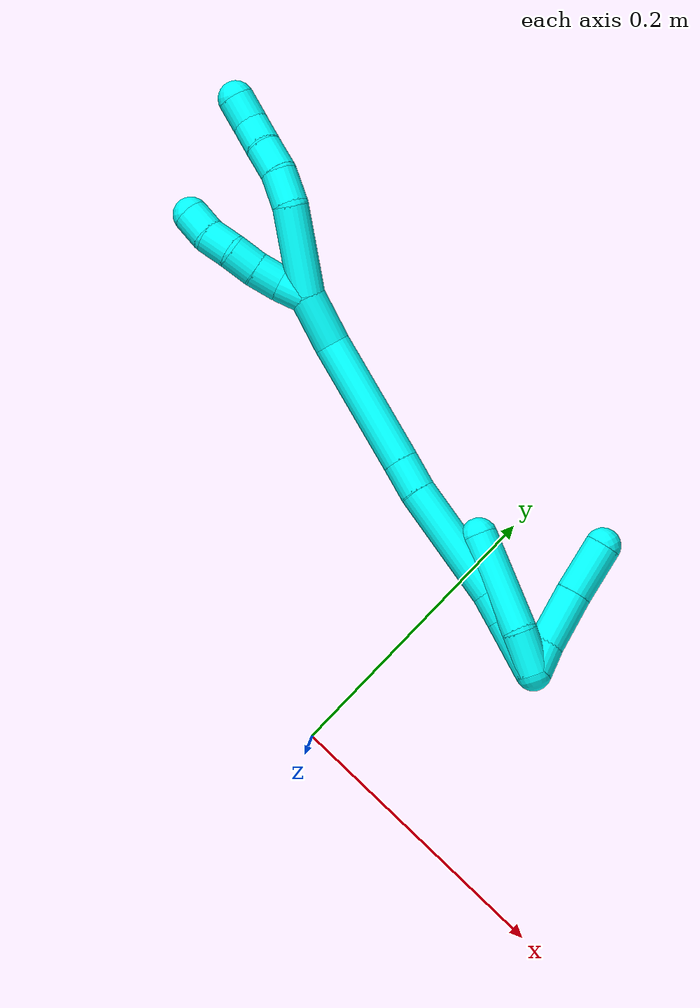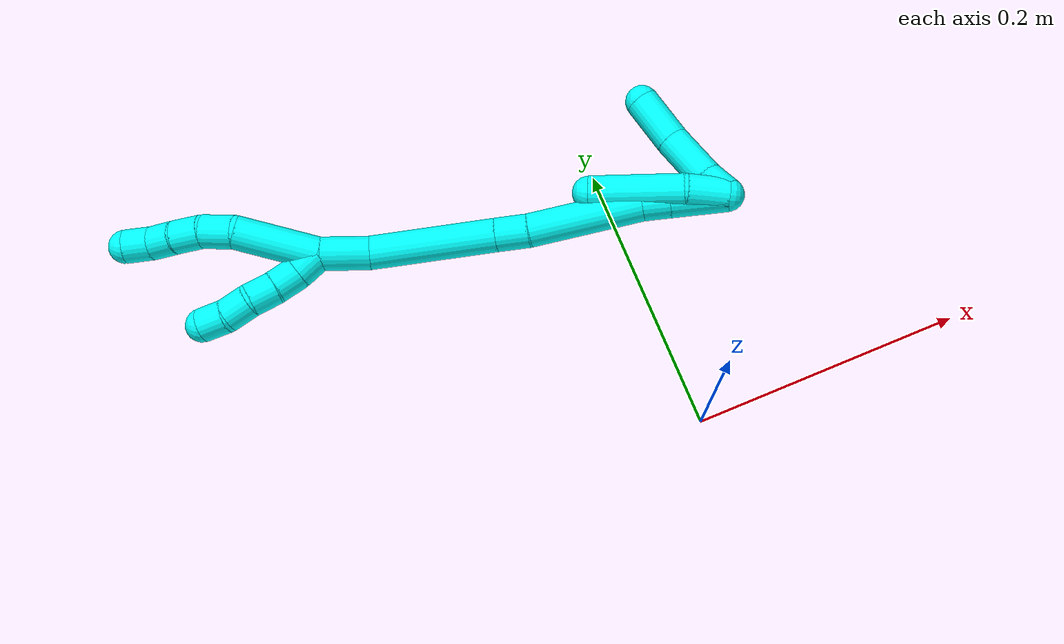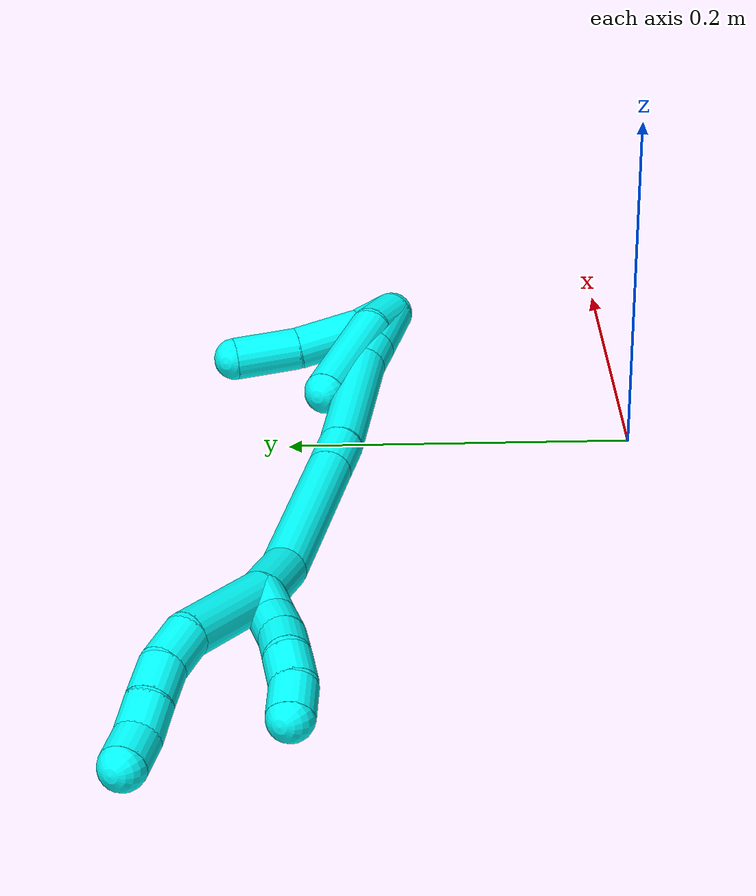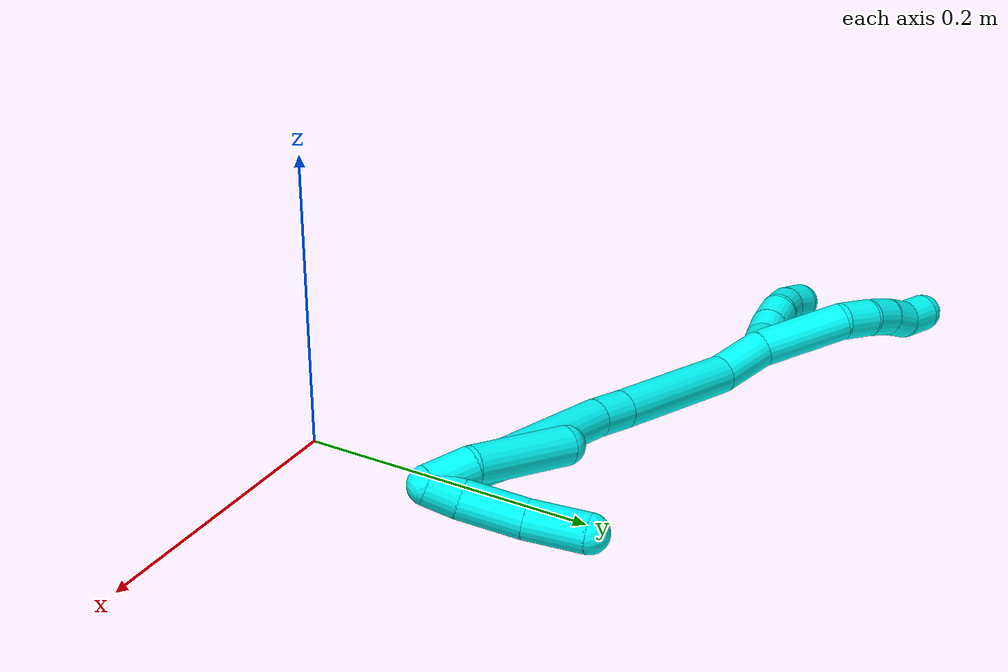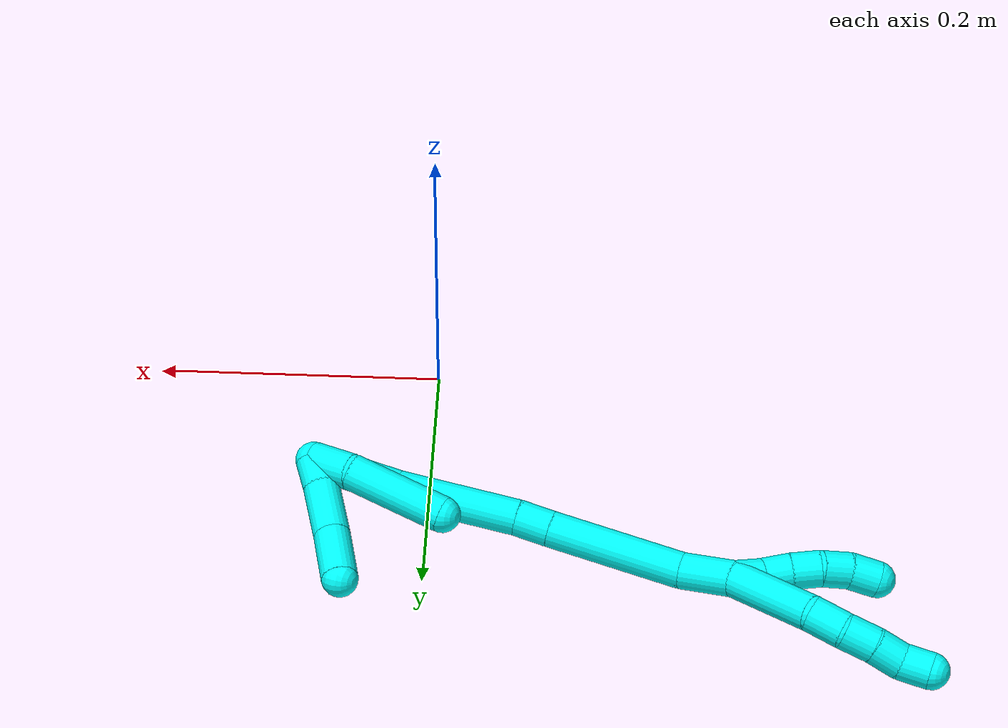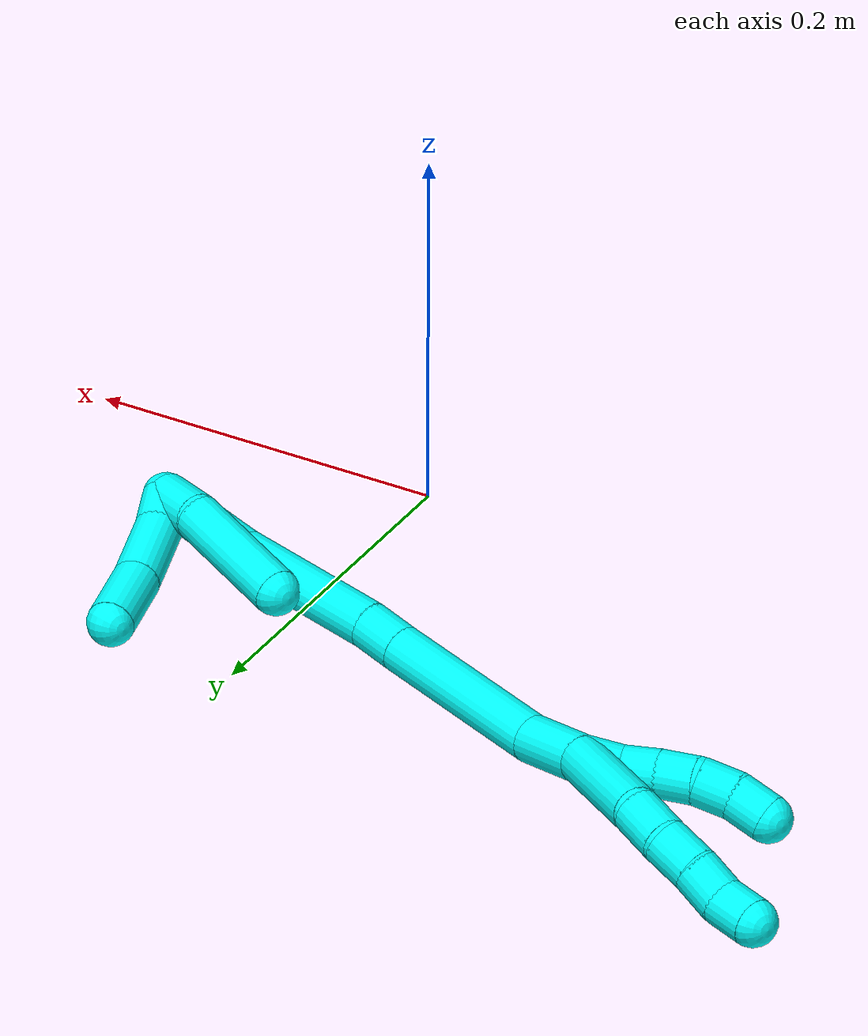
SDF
<sdf version="1.7">
 <world name="default">
  <model name="3">
   <static>0</static>
   <link name="3">
    <collision name="collision-cylinder-e_1_2_8">
     <pose>0.003366 -0.004124 -0.0306 3.00762 0.108574 1.36162</pose>
     <geometry><cylinder><radius>0.0125</radius><length>0.062118</length></cylinder></geometry>
     <surface>
      <friction><ode><mu>1.16</mu><mu2>1.16</mu2><slip1>0</slip1><slip2>0</slip2></ode></friction>
      <contact><ode><kp>1e+06</kp><kd>1</kd><max_vel>0</max_vel><min_depth>0.001</min_depth></ode></contact>
     </surface>
    </collision>
    <visual name="visual-cylinder-e_1_2_8">
     <pose>0.003366 -0.004124 -0.0306 3.00762 0.108574 1.36162</pose>
     <geometry><cylinder><radius>0.0125</radius><length>0.062118</length></cylinder></geometry>
     <material><ambient>0.003922 1 0.996078 1</ambient></material>
    </visual>
    <collision name="collision-cylinder-e_2_8_9">
     <pose>0.00449 -0.011348 -0.072811 2.8807 -0.184351 -1.22762</pose>
     <geometry><cylinder><radius>0.0125</radius><length>0.02445</length></cylinder></geometry>
     <surface>
      <friction><ode><mu>1.16</mu><mu2>1.16</mu2><slip1>0</slip1><slip2>0</slip2></ode></friction>
      <contact><ode><kp>1e+06</kp><kd>1</kd><max_vel>0</max_vel><min_depth>0.001</min_depth></ode></contact>
     </surface>
    </collision>
    <visual name="visual-cylinder-e_2_8_9">
     <pose>0.00449 -0.011348 -0.072811 2.8807 -0.184351 -1.22762</pose>
     <geometry><cylinder><radius>0.0125</radius><length>0.02445</length></cylinder></geometry>
     <material><ambient>0.003922 1 0.996078 1</ambient></material>
    </visual>
    <collision name="collision-cylinder-e_3_9_10">
     <pose>-0.002273 -0.017206 -0.094096 2.86391 -0.422471 -1.98649</pose>
     <geometry><cylinder><radius>0.0125</radius><length>0.022057</length></cylinder></geometry>
     <surface>
      <friction><ode><mu>1.16</mu><mu2>1.16</mu2><slip1>0</slip1><slip2>0</slip2></ode></friction>
      <contact><ode><kp>1e+06</kp><kd>1</kd><max_vel>0</max_vel><min_depth>0.001</min_depth></ode></contact>
     </surface>
    </collision>
    <visual name="visual-cylinder-e_3_9_10">
     <pose>-0.002273 -0.017206 -0.094096 2.86391 -0.422471 -1.98649</pose>
     <geometry><cylinder><radius>0.0125</radius><length>0.022057</length></cylinder></geometry>
     <material><ambient>0.003922 1 0.996078 1</ambient></material>
    </visual>
    <collision name="collision-cylinder-e_4_10_11">
     <pose>-0.01154 -0.023599 -0.112199 2.73441 -0.477107 -1.73381</pose>
     <geometry><cylinder><radius>0.0125</radius><length>0.020669</length></cylinder></geometry>
     <surface>
      <friction><ode><mu>1.16</mu><mu2>1.16</mu2><slip1>0</slip1><slip2>0</slip2></ode></friction>
      <contact><ode><kp>1e+06</kp><kd>1</kd><max_vel>0</max_vel><min_depth>0.001</min_depth></ode></contact>
     </surface>
    </collision>
    <visual name="visual-cylinder-e_4_10_11">
     <pose>-0.01154 -0.023599 -0.112199 2.73441 -0.477107 -1.73381</pose>
     <geometry><cylinder><radius>0.0125</radius><length>0.020669</length></cylinder></geometry>
     <material><ambient>0.003922 1 0.996078 1</ambient></material>
    </visual>
    <collision name="collision-cylinder-e_5_11_6">
     <pose>-0.019215 -0.028221 -0.130509 3.04207 -0.286874 -2.47748</pose>
     <geometry><cylinder><radius>0.0125</radius><length>0.020705</length></cylinder></geometry>
     <surface>
      <friction><ode><mu>1.16</mu><mu2>1.16</mu2><slip1>0</slip1><slip2>0</slip2></ode></friction>
      <contact><ode><kp>1e+06</kp><kd>1</kd><max_vel>0</max_vel><min_depth>0.001</min_depth></ode></contact>
     </surface>
    </collision>
    <visual name="visual-cylinder-e_5_11_6">
     <pose>-0.019215 -0.028221 -0.130509 3.04207 -0.286874 -2.47748</pose>
     <geometry><cylinder><radius>0.0125</radius><length>0.020705</length></cylinder></geometry>
     <material><ambient>0.003922 1 0.996078 1</ambient></material>
    </visual>
    <collision name="collision-cylinder-e_1_2_12">
     <pose>-0.007217 0.002009 -0.006624 -2.84708 -0.80632 2.47222</pose>
     <geometry><cylinder><radius>0.0125</radius><length>0.02</length></cylinder></geometry>
     <surface>
      <friction><ode><mu>1.16</mu><mu2>1.16</mu2><slip1>0</slip1><slip2>0</slip2></ode></friction>
      <contact><ode><kp>1e+06</kp><kd>1</kd><max_vel>0</max_vel><min_depth>0.001</min_depth></ode></contact>
     </surface>
    </collision>
    <visual name="visual-cylinder-e_1_2_12">
     <pose>-0.007217 0.002009 -0.006624 -2.84708 -0.80632 2.47222</pose>
     <geometry><cylinder><radius>0.0125</radius><length>0.02</length></cylinder></geometry>
     <material><ambient>0.003922 1 0.996078 1</ambient></material>
    </visual>
    <collision name="collision-cylinder-e_2_12_13">
     <pose>-0.019834 0.007501 -0.02091 -2.71503 -0.570371 1.86912</pose>
     <geometry><cylinder><radius>0.0125</radius><length>0.02</length></cylinder></geometry>
     <surface>
      <friction><ode><mu>1.16</mu><mu2>1.16</mu2><slip1>0</slip1><slip2>0</slip2></ode></friction>
      <contact><ode><kp>1e+06</kp><kd>1</kd><max_vel>0</max_vel><min_depth>0.001</min_depth></ode></contact>
     </surface>
    </collision>
    <visual name="visual-cylinder-e_2_12_13">
     <pose>-0.019834 0.007501 -0.02091 -2.71503 -0.570371 1.86912</pose>
     <geometry><cylinder><radius>0.0125</radius><length>0.02</length></cylinder></geometry>
     <material><ambient>0.003922 1 0.996078 1</ambient></material>
    </visual>
    <collision name="collision-cylinder-e_3_13_14">
     <pose>-0.030005 0.013725 -0.036922 -2.82428 -0.497354 2.01708</pose>
     <geometry><cylinder><radius>0.0125</radius><length>0.02</length></cylinder></geometry>
     <surface>
      <friction><ode><mu>1.16</mu><mu2>1.16</mu2><slip1>0</slip1><slip2>0</slip2></ode></friction>
      <contact><ode><kp>1e+06</kp><kd>1</kd><max_vel>0</max_vel><min_depth>0.001</min_depth></ode></contact>
     </surface>
    </collision>
    <visual name="visual-cylinder-e_3_13_14">
     <pose>-0.030005 0.013725 -0.036922 -2.82428 -0.497354 2.01708</pose>
     <geometry><cylinder><radius>0.0125</radius><length>0.02</length></cylinder></geometry>
     <material><ambient>0.003922 1 0.996078 1</ambient></material>
    </visual>
    <collision name="collision-cylinder-e_4_14_15">
     <pose>-0.041255 0.01734 -0.052839 -3.02676 -0.704869 2.83153</pose>
     <geometry><cylinder><radius>0.0125</radius><length>0.02</length></cylinder></geometry>
     <surface>
      <friction><ode><mu>1.16</mu><mu2>1.16</mu2><slip1>0</slip1><slip2>0</slip2></ode></friction>
      <contact><ode><kp>1e+06</kp><kd>1</kd><max_vel>0</max_vel><min_depth>0.001</min_depth></ode></contact>
     </surface>
    </collision>
    <visual name="visual-cylinder-e_4_14_15">
     <pose>-0.041255 0.01734 -0.052839 -3.02676 -0.704869 2.83153</pose>
     <geometry><cylinder><radius>0.0125</radius><length>0.02</length></cylinder></geometry>
     <material><ambient>0.003922 1 0.996078 1</ambient></material>
    </visual>
    <collision name="collision-cylinder-e_5_15_5">
     <pose>-0.052993 0.016955 -0.068818 2.99319 -0.553741 -2.62987</pose>
     <geometry><cylinder><radius>0.0125</radius><length>0.02</length></cylinder></geometry>
     <surface>
      <friction><ode><mu>1.16</mu><mu2>1.16</mu2><slip1>0</slip1><slip2>0</slip2></ode></friction>
      <contact><ode><kp>1e+06</kp><kd>1</kd><max_vel>0</max_vel><min_depth>0.001</min_depth></ode></contact>
     </surface>
    </collision>
    <visual name="visual-cylinder-e_5_15_5">
     <pose>-0.052993 0.016955 -0.068818 2.99319 -0.553741 -2.62987</pose>
     <geometry><cylinder><radius>0.0125</radius><length>0.02</length></cylinder></geometry>
     <material><ambient>0.003922 1 0.996078 1</ambient></material>
    </visual>
    <collision name="collision-cylinder-e_1_2_16">
     <pose>0.001807 -0.001548 0.01848 0.083578 0.097117 0.004064</pose>
     <geometry><cylinder><radius>0.0125</radius><length>0.037266</length></cylinder></geometry>
     <surface>
      <friction><ode><mu>1.16</mu><mu2>1.16</mu2><slip1>0</slip1><slip2>0</slip2></ode></friction>
      <contact><ode><kp>1e+06</kp><kd>1</kd><max_vel>0</max_vel><min_depth>0.001</min_depth></ode></contact>
     </surface>
    </collision>
    <visual name="visual-cylinder-e_1_2_16">
     <pose>0.001807 -0.001548 0.01848 0.083578 0.097117 0.004064</pose>
     <geometry><cylinder><radius>0.0125</radius><length>0.037266</length></cylinder></geometry>
     <material><ambient>0.003922 1 0.996078 1</ambient></material>
    </visual>
    <collision name="collision-cylinder-e_2_16_17">
     <pose>0.017488 0.001307 0.081319 -0.098953 0.301741 -0.015055</pose>
     <geometry><cylinder><radius>0.0125</radius><length>0.093371</length></cylinder></geometry>
     <surface>
      <friction><ode><mu>1.16</mu><mu2>1.16</mu2><slip1>0</slip1><slip2>0</slip2></ode></friction>
      <contact><ode><kp>1e+06</kp><kd>1</kd><max_vel>0</max_vel><min_depth>0.001</min_depth></ode></contact>
     </surface>
    </collision>
    <visual name="visual-cylinder-e_2_16_17">
     <pose>0.017488 0.001307 0.081319 -0.098953 0.301741 -0.015055</pose>
     <geometry><cylinder><radius>0.0125</radius><length>0.093371</length></cylinder></geometry>
     <material><ambient>0.003922 1 0.996078 1</ambient></material>
    </visual>
    <collision name="collision-cylinder-e_3_17_18">
     <pose>0.034922 0.007118 0.137029 -0.12334 0.301784 -0.018777</pose>
     <geometry><cylinder><radius>0.0125</radius><length>0.02396</length></cylinder></geometry>
     <surface>
      <friction><ode><mu>1.16</mu><mu2>1.16</mu2><slip1>0</slip1><slip2>0</slip2></ode></friction>
      <contact><ode><kp>1e+06</kp><kd>1</kd><max_vel>0</max_vel><min_depth>0.001</min_depth></ode></contact>
     </surface>
    </collision>
    <visual name="visual-cylinder-e_3_17_18">
     <pose>0.034922 0.007118 0.137029 -0.12334 0.301784 -0.018777</pose>
     <geometry><cylinder><radius>0.0125</radius><length>0.02396</length></cylinder></geometry>
     <material><ambient>0.003922 1 0.996078 1</ambient></material>
    </visual>
    <collision name="collision-cylinder-e_4_18_19">
     <pose>0.053813 0.010056 0.187325 -0.039267 0.374746 -0.007446</pose>
     <geometry><cylinder><radius>0.0125</radius><length>0.083762</length></cylinder></geometry>
     <surface>
      <friction><ode><mu>1.16</mu><mu2>1.16</mu2><slip1>0</slip1><slip2>0</slip2></ode></friction>
      <contact><ode><kp>1e+06</kp><kd>1</kd><max_vel>0</max_vel><min_depth>0.001</min_depth></ode></contact>
     </surface>
    </collision>
    <visual name="visual-cylinder-e_4_18_19">
     <pose>0.053813 0.010056 0.187325 -0.039267 0.374746 -0.007446</pose>
     <geometry><cylinder><radius>0.0125</radius><length>0.083762</length></cylinder></geometry>
     <material><ambient>0.003922 1 0.996078 1</ambient></material>
    </visual>
    <collision name="collision-cylinder-e_5_19_20">
     <pose>0.071918 0.012607 0.236028 -0.104304 0.275601 -0.014478</pose>
     <geometry><cylinder><radius>0.0125</radius><length>0.020394</length></cylinder></geometry>
     <surface>
      <friction><ode><mu>1.16</mu><mu2>1.16</mu2><slip1>0</slip1><slip2>0</slip2></ode></friction>
      <contact><ode><kp>1e+06</kp><kd>1</kd><max_vel>0</max_vel><min_depth>0.001</min_depth></ode></contact>
     </surface>
    </collision>
    <visual name="visual-cylinder-e_5_19_20">
     <pose>0.071918 0.012607 0.236028 -0.104304 0.275601 -0.014478</pose>
     <geometry><cylinder><radius>0.0125</radius><length>0.020394</length></cylinder></geometry>
     <material><ambient>0.003922 1 0.996078 1</ambient></material>
    </visual>
    <collision name="collision-cylinder-e_6_20_1">
     <pose>0.080271 0.015954 0.265505 -0.117363 0.273914 -0.016193</pose>
     <geometry><cylinder><radius>0.0125</radius><length>0.041248</length></cylinder></geometry>
     <surface>
      <friction><ode><mu>1.16</mu><mu2>1.16</mu2><slip1>0</slip1><slip2>0</slip2></ode></friction>
      <contact><ode><kp>1e+06</kp><kd>1</kd><max_vel>0</max_vel><min_depth>0.001</min_depth></ode></contact>
     </surface>
    </collision>
    <visual name="visual-cylinder-e_6_20_1">
     <pose>0.080271 0.015954 0.265505 -0.117363 0.273914 -0.016193</pose>
     <geometry><cylinder><radius>0.0125</radius><length>0.041248</length></cylinder></geometry>
     <material><ambient>0.003922 1 0.996078 1</ambient></material>
    </visual>
    <collision name="collision-cylinder-e_1_1_21">
     <pose>0.088428 0.010268 0.278794 2.24708 0.245849 0.504171</pose>
     <geometry><cylinder><radius>0.0125</radius><length>0.021181</length></cylinder></geometry>
     <surface>
      <friction><ode><mu>1.16</mu><mu2>1.16</mu2><slip1>0</slip1><slip2>0</slip2></ode></friction>
      <contact><ode><kp>1e+06</kp><kd>1</kd><max_vel>0</max_vel><min_depth>0.001</min_depth></ode></contact>
     </surface>
    </collision>
    <visual name="visual-cylinder-e_1_1_21">
     <pose>0.088428 0.010268 0.278794 2.24708 0.245849 0.504171</pose>
     <geometry><cylinder><radius>0.0125</radius><length>0.021181</length></cylinder></geometry>
     <material><ambient>0.003922 1 0.996078 1</ambient></material>
    </visual>
    <collision name="collision-cylinder-e_2_21_22">
     <pose>0.099318 -0.011485 0.26016 2.29705 0.424784 0.894975</pose>
     <geometry><cylinder><radius>0.0125</radius><length>0.040344</length></cylinder></geometry>
     <surface>
      <friction><ode><mu>1.16</mu><mu2>1.16</mu2><slip1>0</slip1><slip2>0</slip2></ode></friction>
      <contact><ode><kp>1e+06</kp><kd>1</kd><max_vel>0</max_vel><min_depth>0.001</min_depth></ode></contact>
     </surface>
    </collision>
    <visual name="visual-cylinder-e_2_21_22">
     <pose>0.099318 -0.011485 0.26016 2.29705 0.424784 0.894975</pose>
     <geometry><cylinder><radius>0.0125</radius><length>0.040344</length></cylinder></geometry>
     <material><ambient>0.003922 1 0.996078 1</ambient></material>
    </visual>
    <collision name="collision-cylinder-e_3_22_4">
     <pose>0.117625 -0.036923 0.236405 2.34987 0.546243 1.18099</pose>
     <geometry><cylinder><radius>0.0125</radius><length>0.038476</length></cylinder></geometry>
     <surface>
      <friction><ode><mu>1.16</mu><mu2>1.16</mu2><slip1>0</slip1><slip2>0</slip2></ode></friction>
      <contact><ode><kp>1e+06</kp><kd>1</kd><max_vel>0</max_vel><min_depth>0.001</min_depth></ode></contact>
     </surface>
    </collision>
    <visual name="visual-cylinder-e_3_22_4">
     <pose>0.117625 -0.036923 0.236405 2.34987 0.546243 1.18099</pose>
     <geometry><cylinder><radius>0.0125</radius><length>0.038476</length></cylinder></geometry>
     <material><ambient>0.003922 1 0.996078 1</ambient></material>
    </visual>
    <collision name="collision-cylinder-e_1_1_23">
     <pose>0.085477 0.017526 0.270148 3.09172 -0.024729 -0.920503</pose>
     <geometry><cylinder><radius>0.0125</radius><length>0.030198</length></cylinder></geometry>
     <surface>
      <friction><ode><mu>1.16</mu><mu2>1.16</mu2><slip1>0</slip1><slip2>0</slip2></ode></friction>
      <contact><ode><kp>1e+06</kp><kd>1</kd><max_vel>0</max_vel><min_depth>0.001</min_depth></ode></contact>
     </surface>
    </collision>
    <visual name="visual-cylinder-e_1_1_23">
     <pose>0.085477 0.017526 0.270148 3.09172 -0.024729 -0.920503</pose>
     <geometry><cylinder><radius>0.0125</radius><length>0.030198</length></cylinder></geometry>
     <material><ambient>0.003922 1 0.996078 1</ambient></material>
    </visual>
    <collision name="collision-cylinder-e_2_23_3">
     <pose>0.077582 0.009497 0.221777 2.92643 -0.217208 -1.58032</pose>
     <geometry><cylinder><radius>0.0125</radius><length>0.069802</length></cylinder></geometry>
     <surface>
      <friction><ode><mu>1.16</mu><mu2>1.16</mu2><slip1>0</slip1><slip2>0</slip2></ode></friction>
      <contact><ode><kp>1e+06</kp><kd>1</kd><max_vel>0</max_vel><min_depth>0.001</min_depth></ode></contact>
     </surface>
    </collision>
    <visual name="visual-cylinder-e_2_23_3">
     <pose>0.077582 0.009497 0.221777 2.92643 -0.217208 -1.58032</pose>
     <geometry><cylinder><radius>0.0125</radius><length>0.069802</length></cylinder></geometry>
     <material><ambient>0.003922 1 0.996078 1</ambient></material>
    </visual>
    <collision name="collision-sphere-3">
     <pose>0.070061 0.002221 0.188482 0 -0 0</pose>
     <geometry><sphere><radius>0.0125</radius></sphere></geometry>
     <surface>
      <friction><ode><mu>1.16</mu><mu2>1.16</mu2><slip1>0</slip1><slip2>0</slip2></ode></friction>
      <contact><ode><kp>1e+06</kp><kd>1</kd><max_vel>0</max_vel><min_depth>0.001</min_depth></ode></contact>
     </surface>
    </collision>
    <visual name="visual-sphere-3">
     <pose>0.070061 0.002221 0.188482 0 -0 0</pose>
     <geometry><sphere><radius>0.0125</radius></sphere></geometry>
     <material><ambient>0.003922 1 0.996078 1</ambient></material>
    </visual>
    <collision name="collision-sphere-23">
     <pose>0.085104 0.016774 0.255072 0 -0 0</pose>
     <geometry><sphere><radius>0.0125</radius></sphere></geometry>
     <surface>
      <friction><ode><mu>1.16</mu><mu2>1.16</mu2><slip1>0</slip1><slip2>0</slip2></ode></friction>
      <contact><ode><kp>1e+06</kp><kd>1</kd><max_vel>0</max_vel><min_depth>0.001</min_depth></ode></contact>
     </surface>
    </collision>
    <visual name="visual-sphere-23">
     <pose>0.085104 0.016774 0.255072 0 -0 0</pose>
     <geometry><sphere><radius>0.0125</radius></sphere></geometry>
     <material><ambient>0.003922 1 0.996078 1</ambient></material>
    </visual>
    <collision name="collision-sphere-4">
     <pose>0.127619 -0.04862 0.224855 0 -0 0</pose>
     <geometry><sphere><radius>0.0125</radius></sphere></geometry>
     <surface>
      <friction><ode><mu>1.16</mu><mu2>1.16</mu2><slip1>0</slip1><slip2>0</slip2></ode></friction>
      <contact><ode><kp>1e+06</kp><kd>1</kd><max_vel>0</max_vel><min_depth>0.001</min_depth></ode></contact>
     </surface>
    </collision>
    <visual name="visual-sphere-4">
     <pose>0.127619 -0.04862 0.224855 0 -0 0</pose>
     <geometry><sphere><radius>0.0125</radius></sphere></geometry>
     <material><ambient>0.003922 1 0.996078 1</ambient></material>
    </visual>
    <collision name="collision-sphere-22">
     <pose>0.107632 -0.025226 0.247955 0 -0 0</pose>
     <geometry><sphere><radius>0.0125</radius></sphere></geometry>
     <surface>
      <friction><ode><mu>1.16</mu><mu2>1.16</mu2><slip1>0</slip1><slip2>0</slip2></ode></friction>
      <contact><ode><kp>1e+06</kp><kd>1</kd><max_vel>0</max_vel><min_depth>0.001</min_depth></ode></contact>
     </surface>
    </collision>
    <visual name="visual-sphere-22">
     <pose>0.107632 -0.025226 0.247955 0 -0 0</pose>
     <geometry><sphere><radius>0.0125</radius></sphere></geometry>
     <material><ambient>0.003922 1 0.996078 1</ambient></material>
    </visual>
    <collision name="collision-sphere-21">
     <pose>0.091005 0.002257 0.272365 0 -0 0</pose>
     <geometry><sphere><radius>0.0125</radius></sphere></geometry>
     <surface>
      <friction><ode><mu>1.16</mu><mu2>1.16</mu2><slip1>0</slip1><slip2>0</slip2></ode></friction>
      <contact><ode><kp>1e+06</kp><kd>1</kd><max_vel>0</max_vel><min_depth>0.001</min_depth></ode></contact>
     </surface>
    </collision>
    <visual name="visual-sphere-21">
     <pose>0.091005 0.002257 0.272365 0 -0 0</pose>
     <geometry><sphere><radius>0.0125</radius></sphere></geometry>
     <material><ambient>0.003922 1 0.996078 1</ambient></material>
    </visual>
    <collision name="collision-sphere-1">
     <pose>0.08585 0.018279 0.285223 0 -0 0</pose>
     <geometry><sphere><radius>0.0125</radius></sphere></geometry>
     <surface>
      <friction><ode><mu>1.16</mu><mu2>1.16</mu2><slip1>0</slip1><slip2>0</slip2></ode></friction>
      <contact><ode><kp>1e+06</kp><kd>1</kd><max_vel>0</max_vel><min_depth>0.001</min_depth></ode></contact>
     </surface>
    </collision>
    <visual name="visual-sphere-1">
     <pose>0.08585 0.018279 0.285223 0 -0 0</pose>
     <geometry><sphere><radius>0.0125</radius></sphere></geometry>
     <material><ambient>0.003922 1 0.996078 1</ambient></material>
    </visual>
    <collision name="collision-sphere-6">
     <pose>-0.022145 -0.029208 -0.140389 0 -0 0</pose>
     <geometry><sphere><radius>0.0125</radius></sphere></geometry>
     <surface>
      <friction><ode><mu>1.16</mu><mu2>1.16</mu2><slip1>0</slip1><slip2>0</slip2></ode></friction>
      <contact><ode><kp>1e+06</kp><kd>1</kd><max_vel>0</max_vel><min_depth>0.001</min_depth></ode></contact>
     </surface>
    </collision>
    <visual name="visual-sphere-6">
     <pose>-0.022145 -0.029208 -0.140389 0 -0 0</pose>
     <geometry><sphere><radius>0.0125</radius></sphere></geometry>
     <material><ambient>0.003922 1 0.996078 1</ambient></material>
    </visual>
    <collision name="collision-sphere-11">
     <pose>-0.016286 -0.027235 -0.120629 0 -0 0</pose>
     <geometry><sphere><radius>0.0125</radius></sphere></geometry>
     <surface>
      <friction><ode><mu>1.16</mu><mu2>1.16</mu2><slip1>0</slip1><slip2>0</slip2></ode></friction>
      <contact><ode><kp>1e+06</kp><kd>1</kd><max_vel>0</max_vel><min_depth>0.001</min_depth></ode></contact>
     </surface>
    </collision>
    <visual name="visual-sphere-11">
     <pose>-0.016286 -0.027235 -0.120629 0 -0 0</pose>
     <geometry><sphere><radius>0.0125</radius></sphere></geometry>
     <material><ambient>0.003922 1 0.996078 1</ambient></material>
    </visual>
    <collision name="collision-sphere-10">
     <pose>-0.006795 -0.019963 -0.10377 0 -0 0</pose>
     <geometry><sphere><radius>0.0125</radius></sphere></geometry>
     <surface>
      <friction><ode><mu>1.16</mu><mu2>1.16</mu2><slip1>0</slip1><slip2>0</slip2></ode></friction>
      <contact><ode><kp>1e+06</kp><kd>1</kd><max_vel>0</max_vel><min_depth>0.001</min_depth></ode></contact>
     </surface>
    </collision>
    <visual name="visual-sphere-10">
     <pose>-0.006795 -0.019963 -0.10377 0 -0 0</pose>
     <geometry><sphere><radius>0.0125</radius></sphere></geometry>
     <material><ambient>0.003922 1 0.996078 1</ambient></material>
    </visual>
    <collision name="collision-sphere-9">
     <pose>0.002249 -0.014448 -0.084422 0 -0 0</pose>
     <geometry><sphere><radius>0.0125</radius></sphere></geometry>
     <surface>
      <friction><ode><mu>1.16</mu><mu2>1.16</mu2><slip1>0</slip1><slip2>0</slip2></ode></friction>
      <contact><ode><kp>1e+06</kp><kd>1</kd><max_vel>0</max_vel><min_depth>0.001</min_depth></ode></contact>
     </surface>
    </collision>
    <visual name="visual-sphere-9">
     <pose>0.002249 -0.014448 -0.084422 0 -0 0</pose>
     <geometry><sphere><radius>0.0125</radius></sphere></geometry>
     <material><ambient>0.003922 1 0.996078 1</ambient></material>
    </visual>
    <collision name="collision-sphere-2">
     <geometry><sphere><radius>0.0125</radius></sphere></geometry>
     <surface>
      <friction><ode><mu>1.16</mu><mu2>1.16</mu2><slip1>0</slip1><slip2>0</slip2></ode></friction>
      <contact><ode><kp>1e+06</kp><kd>1</kd><max_vel>0</max_vel><min_depth>0.001</min_depth></ode></contact>
     </surface>
    </collision>
    <visual name="visual-sphere-2">
     <geometry><sphere><radius>0.0125</radius></sphere></geometry>
     <material><ambient>0.003922 1 0.996078 1</ambient></material>
    </visual>
    <collision name="collision-sphere-19">
     <pose>0.069143 0.011586 0.226269 0 -0 0</pose>
     <geometry><sphere><radius>0.0125</radius></sphere></geometry>
     <surface>
      <friction><ode><mu>1.16</mu><mu2>1.16</mu2><slip1>0</slip1><slip2>0</slip2></ode></friction>
      <contact><ode><kp>1e+06</kp><kd>1</kd><max_vel>0</max_vel><min_depth>0.001</min_depth></ode></contact>
     </surface>
    </collision>
    <visual name="visual-sphere-19">
     <pose>0.069143 0.011586 0.226269 0 -0 0</pose>
     <geometry><sphere><radius>0.0125</radius></sphere></geometry>
     <material><ambient>0.003922 1 0.996078 1</ambient></material>
    </visual>
    <collision name="collision-sphere-8">
     <pose>0.006731 -0.008248 -0.061199 0 -0 0</pose>
     <geometry><sphere><radius>0.0125</radius></sphere></geometry>
     <surface>
      <friction><ode><mu>1.16</mu><mu2>1.16</mu2><slip1>0</slip1><slip2>0</slip2></ode></friction>
      <contact><ode><kp>1e+06</kp><kd>1</kd><max_vel>0</max_vel><min_depth>0.001</min_depth></ode></contact>
     </surface>
    </collision>
    <visual name="visual-sphere-8">
     <pose>0.006731 -0.008248 -0.061199 0 -0 0</pose>
     <geometry><sphere><radius>0.0125</radius></sphere></geometry>
     <material><ambient>0.003922 1 0.996078 1</ambient></material>
    </visual>
    <collision name="collision-sphere-12">
     <pose>-0.014435 0.004018 -0.013247 0 -0 0</pose>
     <geometry><sphere><radius>0.0125</radius></sphere></geometry>
     <surface>
      <friction><ode><mu>1.16</mu><mu2>1.16</mu2><slip1>0</slip1><slip2>0</slip2></ode></friction>
      <contact><ode><kp>1e+06</kp><kd>1</kd><max_vel>0</max_vel><min_depth>0.001</min_depth></ode></contact>
     </surface>
    </collision>
    <visual name="visual-sphere-12">
     <pose>-0.014435 0.004018 -0.013247 0 -0 0</pose>
     <geometry><sphere><radius>0.0125</radius></sphere></geometry>
     <material><ambient>0.003922 1 0.996078 1</ambient></material>
    </visual>
    <collision name="collision-sphere-13">
     <pose>-0.025234 0.010983 -0.028573 0 -0 0</pose>
     <geometry><sphere><radius>0.0125</radius></sphere></geometry>
     <surface>
      <friction><ode><mu>1.16</mu><mu2>1.16</mu2><slip1>0</slip1><slip2>0</slip2></ode></friction>
      <contact><ode><kp>1e+06</kp><kd>1</kd><max_vel>0</max_vel><min_depth>0.001</min_depth></ode></contact>
     </surface>
    </collision>
    <visual name="visual-sphere-13">
     <pose>-0.025234 0.010983 -0.028573 0 -0 0</pose>
     <geometry><sphere><radius>0.0125</radius></sphere></geometry>
     <material><ambient>0.003922 1 0.996078 1</ambient></material>
    </visual>
    <collision name="collision-sphere-14">
     <pose>-0.034776 0.016468 -0.045272 0 -0 0</pose>
     <geometry><sphere><radius>0.0125</radius></sphere></geometry>
     <surface>
      <friction><ode><mu>1.16</mu><mu2>1.16</mu2><slip1>0</slip1><slip2>0</slip2></ode></friction>
      <contact><ode><kp>1e+06</kp><kd>1</kd><max_vel>0</max_vel><min_depth>0.001</min_depth></ode></contact>
     </surface>
    </collision>
    <visual name="visual-sphere-14">
     <pose>-0.034776 0.016468 -0.045272 0 -0 0</pose>
     <geometry><sphere><radius>0.0125</radius></sphere></geometry>
     <material><ambient>0.003922 1 0.996078 1</ambient></material>
    </visual>
    <collision name="collision-sphere-15">
     <pose>-0.047735 0.018213 -0.060406 0 -0 0</pose>
     <geometry><sphere><radius>0.0125</radius></sphere></geometry>
     <surface>
      <friction><ode><mu>1.16</mu><mu2>1.16</mu2><slip1>0</slip1><slip2>0</slip2></ode></friction>
      <contact><ode><kp>1e+06</kp><kd>1</kd><max_vel>0</max_vel><min_depth>0.001</min_depth></ode></contact>
     </surface>
    </collision>
    <visual name="visual-sphere-15">
     <pose>-0.047735 0.018213 -0.060406 0 -0 0</pose>
     <geometry><sphere><radius>0.0125</radius></sphere></geometry>
     <material><ambient>0.003922 1 0.996078 1</ambient></material>
    </visual>
    <collision name="collision-sphere-5">
     <pose>-0.058252 0.015698 -0.07723 0 -0 0</pose>
     <geometry><sphere><radius>0.0125</radius></sphere></geometry>
     <surface>
      <friction><ode><mu>1.16</mu><mu2>1.16</mu2><slip1>0</slip1><slip2>0</slip2></ode></friction>
      <contact><ode><kp>1e+06</kp><kd>1</kd><max_vel>0</max_vel><min_depth>0.001</min_depth></ode></contact>
     </surface>
    </collision>
    <visual name="visual-sphere-5">
     <pose>-0.058252 0.015698 -0.07723 0 -0 0</pose>
     <geometry><sphere><radius>0.0125</radius></sphere></geometry>
     <material><ambient>0.003922 1 0.996078 1</ambient></material>
    </visual>
    <collision name="collision-sphere-16">
     <pose>0.003613 -0.003096 0.036961 0 -0 0</pose>
     <geometry><sphere><radius>0.0125</radius></sphere></geometry>
     <surface>
      <friction><ode><mu>1.16</mu><mu2>1.16</mu2><slip1>0</slip1><slip2>0</slip2></ode></friction>
      <contact><ode><kp>1e+06</kp><kd>1</kd><max_vel>0</max_vel><min_depth>0.001</min_depth></ode></contact>
     </surface>
    </collision>
    <visual name="visual-sphere-16">
     <pose>0.003613 -0.003096 0.036961 0 -0 0</pose>
     <geometry><sphere><radius>0.0125</radius></sphere></geometry>
     <material><ambient>0.003922 1 0.996078 1</ambient></material>
    </visual>
    <collision name="collision-sphere-17">
     <pose>0.031362 0.005711 0.125677 0 -0 0</pose>
     <geometry><sphere><radius>0.0125</radius></sphere></geometry>
     <surface>
      <friction><ode><mu>1.16</mu><mu2>1.16</mu2><slip1>0</slip1><slip2>0</slip2></ode></friction>
      <contact><ode><kp>1e+06</kp><kd>1</kd><max_vel>0</max_vel><min_depth>0.001</min_depth></ode></contact>
     </surface>
    </collision>
    <visual name="visual-sphere-17">
     <pose>0.031362 0.005711 0.125677 0 -0 0</pose>
     <geometry><sphere><radius>0.0125</radius></sphere></geometry>
     <material><ambient>0.003922 1 0.996078 1</ambient></material>
    </visual>
    <collision name="collision-sphere-18">
     <pose>0.038483 0.008526 0.148381 0 -0 0</pose>
     <geometry><sphere><radius>0.0125</radius></sphere></geometry>
     <surface>
      <friction><ode><mu>1.16</mu><mu2>1.16</mu2><slip1>0</slip1><slip2>0</slip2></ode></friction>
      <contact><ode><kp>1e+06</kp><kd>1</kd><max_vel>0</max_vel><min_depth>0.001</min_depth></ode></contact>
     </surface>
    </collision>
    <visual name="visual-sphere-18">
     <pose>0.038483 0.008526 0.148381 0 -0 0</pose>
     <geometry><sphere><radius>0.0125</radius></sphere></geometry>
     <material><ambient>0.003922 1 0.996078 1</ambient></material>
    </visual>
    <collision name="collision-sphere-20">
     <pose>0.074693 0.013629 0.245787 0 -0 0</pose>
     <geometry><sphere><radius>0.0125</radius></sphere></geometry>
     <surface>
      <friction><ode><mu>1.16</mu><mu2>1.16</mu2><slip1>0</slip1><slip2>0</slip2></ode></friction>
      <contact><ode><kp>1e+06</kp><kd>1</kd><max_vel>0</max_vel><min_depth>0.001</min_depth></ode></contact>
     </surface>
    </collision>
    <visual name="visual-sphere-20">
     <pose>0.074693 0.013629 0.245787 0 -0 0</pose>
     <geometry><sphere><radius>0.0125</radius></sphere></geometry>
     <material><ambient>0.003922 1 0.996078 1</ambient></material>
    </visual>
    <inertial>
     <pose>0.035774 0.000911 0.103541 0 -0 0</pose>
     <mass>0.75</mass>
     <inertia>
      <ixx>0.000139</ixx>
      <ixy>0</ixy>
      <ixz>0</ixz>
      <iyy>0.00013</iyy>
      <iyz>0</iyz>
      <izz>-3.6e-05</izz>
     </inertia>
    </inertial>
   </link>
   <pose>-0.210413 0.214966 0.027438 1.76979 -0.658555 0.992788</pose>
  </model>
 </world>
</sdf>
